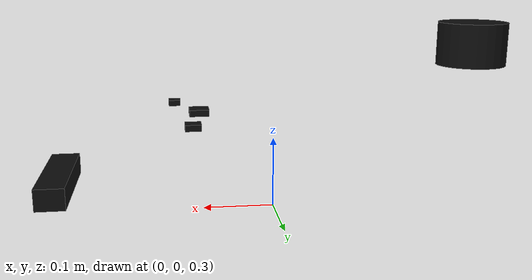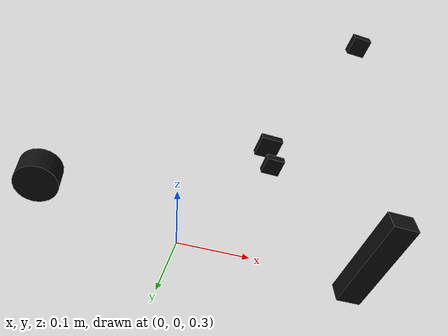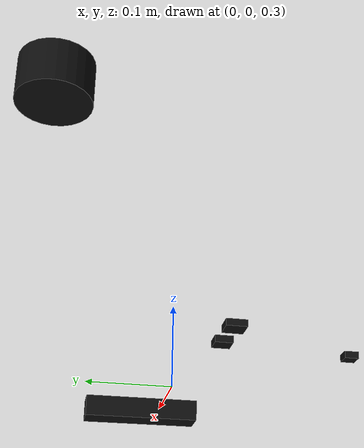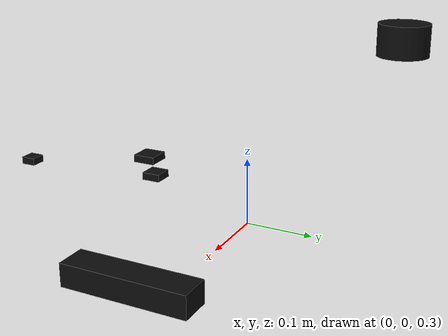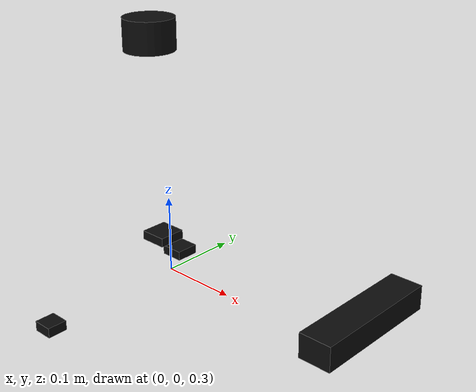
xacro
<?xml version="1.0"?>
<robot name="tracked_robot" xmlns:xacro="http://www.ros.org/wiki/xacro">

  <!-- Материал для визуализации датчиков -->
  <material name="black">
    <color rgba="0.05 0.05 0.05 1.0"/>
  </material>

  <!-- ============ корень TF ============ -->
  <link name="base_link"/>

  <!-- ============ координаты датчиков (ПРАВЬТЕ ЗДЕСЬ) ============ -->
  <xacro:property name="imu_xyz"  value="0.135 -0.275 0.4" />
  <xacro:property name="mag_xyz"  value="0.11  -0.085 0.4" />   <!-- магнитометр -->
  <xacro:property name="gps_xyz"  value="0.10  -0.100 0.42" /> <!-- GPS-антенна -->
  <xacro:property name="laser_xyz" value="-0.21  0.16  0.55" />
  <!-- Камера Orbbec Astra: ЖЁСТКО спереди на корпусе. Правьте под реальное
       крепление. Смотрит вперёд по +X. -->
  <xacro:property name="cam_xyz"  value="0.30  0.0   0.35" />
  <!-- Смещение RGB-матрицы Astra относительно центра корпуса камеры (базлайн) -->
  <xacro:property name="cam_rgb_yoff"   value="-0.025" />
  <xacro:property name="PI" value="3.14159265359" />

  <!-- ============ MPU6050 ============ -->
  <link name="imu_link">
    <visual>
      <geometry><box size="0.02 0.02 0.01"/></geometry>
      <material name="black"/>
    </visual>
  </link>
  <joint name="base_to_imu" type="fixed">
    <parent link="base_link"/>
    <child  link="imu_link"/>
    <origin xyz="${imu_xyz}" rpy="0 0 0"/>
  </joint>

  <!-- ============ Магнитометр (отдельный модуль) ============ -->
  <link name="mag_link">
    <visual>
      <geometry><box size="0.025 0.025 0.01"/></geometry>
      <material name="black"/>
    </visual>
  </link>
  <joint name="base_to_mag" type="fixed">
    <parent link="base_link"/>
    <child  link="mag_link"/>
    <origin xyz="${mag_xyz}" rpy="0 0 0"/>
  </joint>

  <!-- ============ GPS-антенна (отдельный модуль) ============ -->
  <link name="gps_link">
    <visual>
      <geometry><box size="0.03 0.03 0.01"/></geometry>
      <material name="black"/>
    </visual>
  </link>
  <joint name="base_to_gps" type="fixed">
    <parent link="base_link"/>
    <child  link="gps_link"/>
    <origin xyz="${gps_xyz}" rpy="0 0 0"/>
  </joint>

  <!-- ============ Камера Orbbec Astra (визуальная одометрия) ============ -->
  <link name="camera_link">
    <visual>
      <geometry><box size="0.04 0.165 0.03"/></geometry>
      <material name="black"/>
    </visual>
  </link>
  <joint name="base_to_camera" type="fixed">
    <parent link="base_link"/>
    <child  link="camera_link"/>
    <origin xyz="${cam_xyz}" rpy="0 0 0"/>
  </joint>

  <!-- Depth: фрейм датчика + оптический фрейм -->
  <link name="camera_depth_frame"/>
  <joint name="camera_depth_joint" type="fixed">
    <parent link="camera_link"/>
    <child  link="camera_depth_frame"/>
    <origin xyz="0 0 0" rpy="0 0 0"/>
  </joint>
  <link name="camera_depth_optical_frame"/>
  <joint name="camera_depth_optical_joint" type="fixed">
    <parent link="camera_depth_frame"/>
    <child  link="camera_depth_optical_frame"/>
    <origin xyz="0 0 0" rpy="${-PI/2} 0 ${-PI/2}"/>
  </joint>

  <!-- RGB: фрейм датчика + оптический фрейм -->
  <link name="camera_rgb_frame"/>
  <joint name="camera_rgb_joint" type="fixed">
    <parent link="camera_link"/>
    <child  link="camera_rgb_frame"/>
    <origin xyz="0 ${cam_rgb_yoff} 0" rpy="0 0 0"/>
  </joint>
  <link name="camera_rgb_optical_frame"/>
  <joint name="camera_rgb_optical_joint" type="fixed">
    <parent link="camera_rgb_frame"/>
    <child  link="camera_rgb_optical_frame"/>
    <origin xyz="0 0 0" rpy="${-PI/2} 0 ${-PI/2}"/>
  </joint>

  <!-- ============ Лидар ============ -->
  <link name="laser_frame">
    <visual>
      <geometry><cylinder radius="0.04" length="0.05"/></geometry>
      <material name="black"/>
    </visual>
  </link>
  <joint name="base_to_laser" type="fixed">
    <parent link="base_link"/>
    <child  link="laser_frame"/>
    <origin xyz="${laser_xyz}" rpy="0 0 0"/>
  </joint>

</robot>
